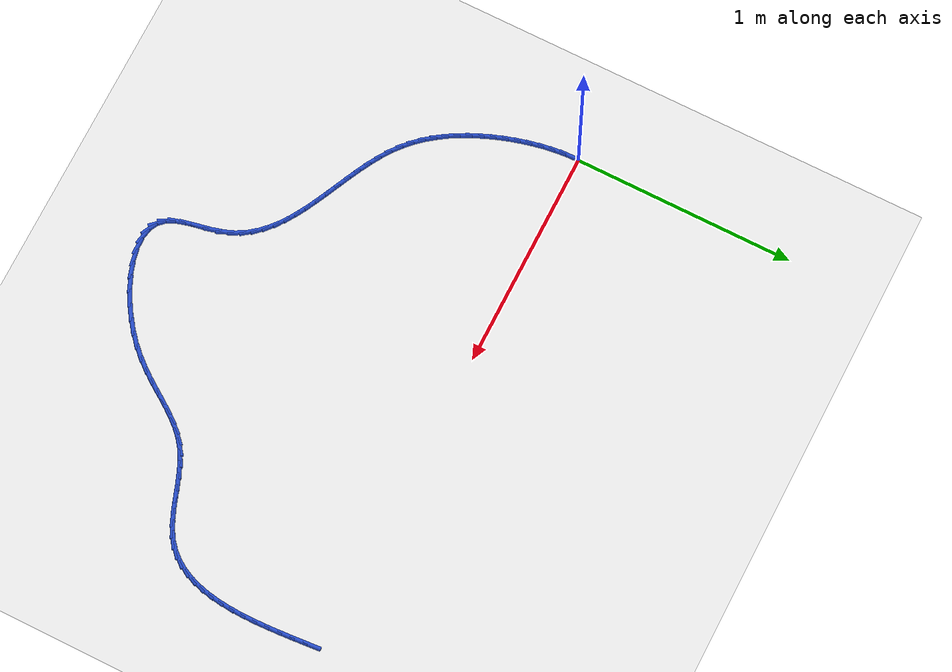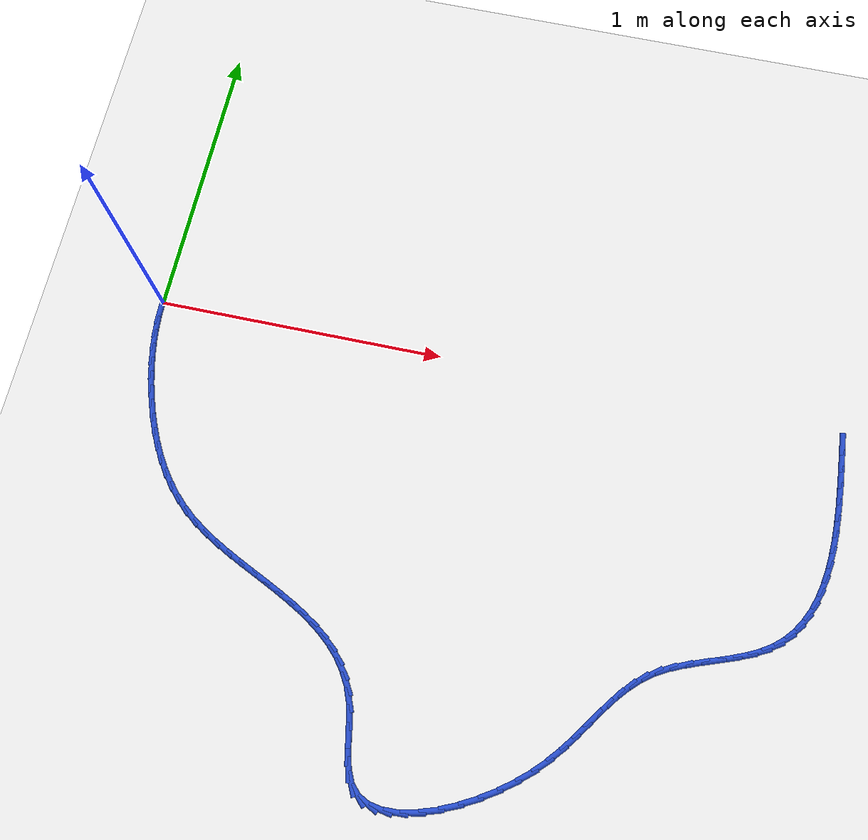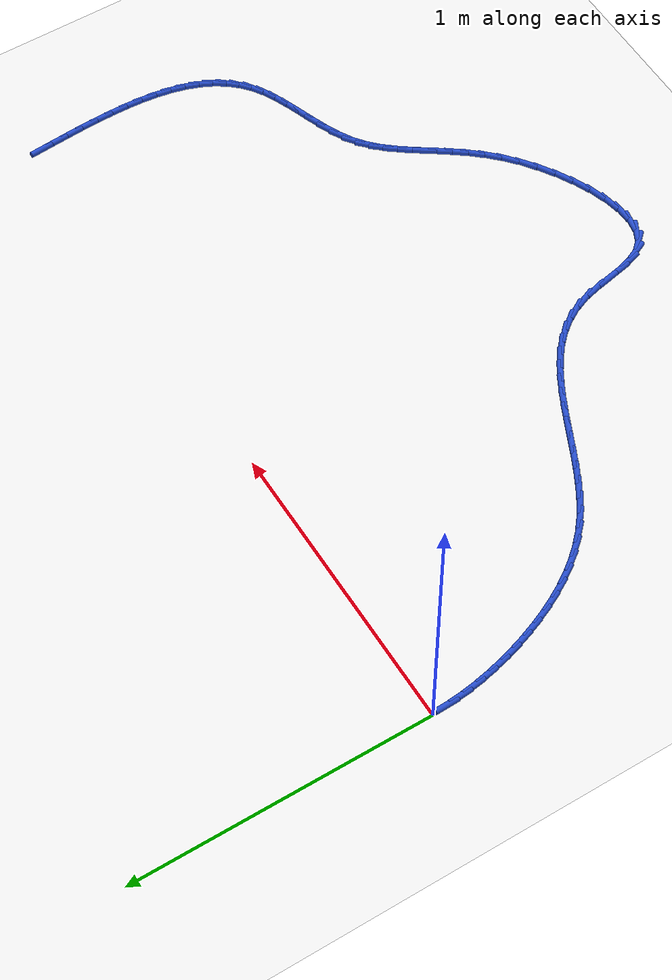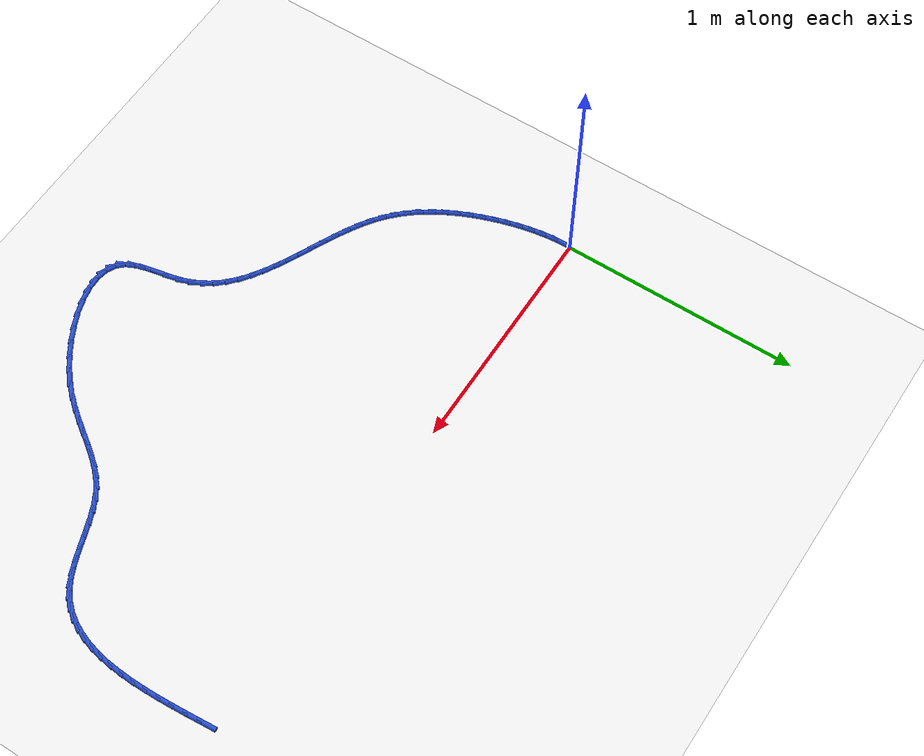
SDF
<sdf version="1.6">
 <world name="default">
  <model name="ground_plane">
   <static>1</static>
   <link name="link">
    <collision name="collision">
     <geometry><plane><normal>0 0 1</normal><size>100 100</size></plane></geometry>
     <surface><friction><ode><mu>100</mu><mu2>50</mu2></ode></friction></surface>
    </collision>
    <visual name="visual">
     <cast_shadows>0</cast_shadows>
     <geometry><plane><normal>0 0 1</normal><size>100 100</size></plane></geometry>
     <material>
      <script><uri>file://media/materials/scripts/gazebo.material</uri><name>Gazebo/WhiteGlow</name></script>
     </material>
    </visual>
   </link>
  </model>
  <model name="line">
   <link name="link_79">
    <pose>2.4016268598637174 -0.034012466724216116 0.01 0 1.57 -1.4928908498108762</pose>
    <collision name="collision">
     <geometry><cylinder><radius>0.01</radius><length>0.08</length></cylinder></geometry>
    </collision>
    <visual name="visual">
     <material>
      <script><name>Gazebo/Blue</name><uri>file://media/materials/scripts/gazebo.material</uri></script>
     </material>
     <geometry><cylinder><radius>0.01</radius><length>0.08</length></cylinder></geometry>
    </visual>
   </link>
   <link name="link_80">
    <pose>2.4061755730700365 -0.09228188769851749 0.01 0 1.57 -1.4992579143648588</pose>
    <collision name="collision">
     <geometry><cylinder><radius>0.01</radius><length>0.08</length></cylinder></geometry>
    </collision>
    <visual name="visual">
     <material>
      <script><name>Gazebo/Blue</name><uri>file://media/materials/scripts/gazebo.material</uri></script>
     </material>
     <geometry><cylinder><radius>0.01</radius><length>0.08</length></cylinder></geometry>
    </visual>
   </link>
   <link name="link_81">
    <pose>2.410336416824834 -0.15034500576017712 0.01 0 1.57 -1.5116749627255117</pose>
    <collision name="collision">
     <geometry><cylinder><radius>0.01</radius><length>0.08</length></cylinder></geometry>
    </collision>
    <visual name="visual">
     <material>
      <script><name>Gazebo/Blue</name><uri>file://media/materials/scripts/gazebo.material</uri></script>
     </material>
     <geometry><cylinder><radius>0.01</radius><length>0.08</length></cylinder></geometry>
    </visual>
   </link>
   <link name="link_82">
    <pose>2.413743878165737 -0.20791286460964334 0.01 0 1.57 -1.5305148673764126</pose>
    <collision name="collision">
     <geometry><cylinder><radius>0.01</radius><length>0.08</length></cylinder></geometry>
    </collision>
    <visual name="visual">
     <material>
      <script><name>Gazebo/Blue</name><uri>file://media/materials/scripts/gazebo.material</uri></script>
     </material>
     <geometry><cylinder><radius>0.01</radius><length>0.08</length></cylinder></geometry>
    </visual>
   </link>
   <link name="link_83">
    <pose>2.4160324441303698 -0.26469650794736166 0.01 0 1.57 -1.556362742582866</pose>
    <collision name="collision">
     <geometry><cylinder><radius>0.01</radius><length>0.08</length></cylinder></geometry>
    </collision>
    <visual name="visual">
     <material>
      <script><name>Gazebo/Blue</name><uri>file://media/materials/scripts/gazebo.material</uri></script>
     </material>
     <geometry><cylinder><radius>0.01</radius><length>0.08</length></cylinder></geometry>
    </visual>
   </link>
   <link name="link_84">
    <pose>2.4168366017563585 -0.32040697947378044 0.01 0 1.57 1.5515568325713953</pose>
    <collision name="collision">
     <geometry><cylinder><radius>0.01</radius><length>0.08</length></cylinder></geometry>
    </collision>
    <visual name="visual">
     <material>
      <script><name>Gazebo/Blue</name><uri>file://media/materials/scripts/gazebo.material</uri></script>
     </material>
     <geometry><cylinder><radius>0.01</radius><length>0.08</length></cylinder></geometry>
    </visual>
   </link>
   <link name="link_85">
    <pose>2.4157908380813287 -0.3747553228893472 0.01 0 1.57 1.5089896166461112</pose>
    <collision name="collision">
     <geometry><cylinder><radius>0.01</radius><length>0.08</length></cylinder></geometry>
    </collision>
    <visual name="visual">
     <material>
      <script><name>Gazebo/Blue</name><uri>file://media/materials/scripts/gazebo.material</uri></script>
     </material>
     <geometry><cylinder><radius>0.01</radius><length>0.08</length></cylinder></geometry>
    </visual>
   </link>
   <link name="link_86">
    <pose>2.412529640142906 -0.4274525818945093 0.01 0 1.57 1.4562008136904623</pose>
    <collision name="collision">
     <geometry><cylinder><radius>0.01</radius><length>0.08</length></cylinder></geometry>
    </collision>
    <visual name="visual">
     <material>
      <script><name>Gazebo/Blue</name><uri>file://media/materials/scripts/gazebo.material</uri></script>
     </material>
     <geometry><cylinder><radius>0.01</radius><length>0.08</length></cylinder></geometry>
    </visual>
   </link>
   <link name="link_87">
    <pose>2.4066874949787156 -0.4782098001897152 0.01 0 1.57 1.3916352321338998</pose>
    <collision name="collision">
     <geometry><cylinder><radius>0.01</radius><length>0.08</length></cylinder></geometry>
    </collision>
    <visual name="visual">
     <material>
      <script><name>Gazebo/Blue</name><uri>file://media/materials/scripts/gazebo.material</uri></script>
     </material>
     <geometry><cylinder><radius>0.01</radius><length>0.08</length></cylinder></geometry>
    </visual>
   </link>
   <link name="link_88">
    <pose>2.3978988896263838 -0.5267380214754103 0.01 0 1.57 1.3136227654888197</pose>
    <collision name="collision">
     <geometry><cylinder><radius>0.01</radius><length>0.08</length></cylinder></geometry>
    </collision>
    <visual name="visual">
     <material>
      <script><name>Gazebo/Blue</name><uri>file://media/materials/scripts/gazebo.material</uri></script>
     </material>
     <geometry><cylinder><radius>0.01</radius><length>0.08</length></cylinder></geometry>
    </visual>
   </link>
   <link name="link_89">
    <pose>2.3857983111235352 -0.572748289452043 0.01 0 1.57 1.2206409488602057</pose>
    <collision name="collision">
     <geometry><cylinder><radius>0.01</radius><length>0.08</length></cylinder></geometry>
    </collision>
    <visual name="visual">
     <material>
      <script><name>Gazebo/Blue</name><uri>file://media/materials/scripts/gazebo.material</uri></script>
     </material>
     <geometry><cylinder><radius>0.01</radius><length>0.08</length></cylinder></geometry>
    </visual>
   </link>
   <link name="link_90">
    <pose>2.370020246507796 -0.6159516478200607 0.01 0 1.57 1.1118006580434525</pose>
    <collision name="collision">
     <geometry><cylinder><radius>0.01</radius><length>0.08</length></cylinder></geometry>
    </collision>
    <visual name="visual">
     <material>
      <script><name>Gazebo/Blue</name><uri>file://media/materials/scripts/gazebo.material</uri></script>
     </material>
     <geometry><cylinder><radius>0.01</radius><length>0.08</length></cylinder></geometry>
    </visual>
   </link>
   <link name="link_91">
    <pose>2.3501991828167923 -0.6560591402799111 0.01 0 1.57 0.9875634459735474</pose>
    <collision name="collision">
     <geometry><cylinder><radius>0.01</radius><length>0.08</length></cylinder></geometry>
    </collision>
    <visual name="visual">
     <material>
      <script><name>Gazebo/Blue</name><uri>file://media/materials/scripts/gazebo.material</uri></script>
     </material>
     <geometry><cylinder><radius>0.01</radius><length>0.08</length></cylinder></geometry>
    </visual>
   </link>
   <link name="link_92">
    <pose>2.3259696070881484 -0.692781810532042 0.01 0 1.57 0.8504974801002713</pose>
    <collision name="collision">
     <geometry><cylinder><radius>0.01</radius><length>0.08</length></cylinder></geometry>
    </collision>
    <visual name="visual">
     <material>
      <script><name>Gazebo/Blue</name><uri>file://media/materials/scripts/gazebo.material</uri></script>
     </material>
     <geometry><cylinder><radius>0.01</radius><length>0.08</length></cylinder></geometry>
    </visual>
   </link>
   <link name="link_93">
    <pose>2.296966006359491 -0.7258307022768995 0.01 0 1.57 0.7055895797726708</pose>
    <collision name="collision">
     <geometry><cylinder><radius>0.01</radius><length>0.08</length></cylinder></geometry>
    </collision>
    <visual name="visual">
     <material>
      <script><name>Gazebo/Blue</name><uri>file://media/materials/scripts/gazebo.material</uri></script>
     </material>
     <geometry><cylinder><radius>0.01</radius><length>0.08</length></cylinder></geometry>
    </visual>
   </link>
   <link name="link_94">
    <pose>2.262822867668445 -0.7549168592149318 0.01 0 1.57 0.5620450698267485</pose>
    <collision name="collision">
     <geometry><cylinder><radius>0.01</radius><length>0.08</length></cylinder></geometry>
    </collision>
    <visual name="visual">
     <material>
      <script><name>Gazebo/Blue</name><uri>file://media/materials/scripts/gazebo.material</uri></script>
     </material>
     <geometry><cylinder><radius>0.01</radius><length>0.08</length></cylinder></geometry>
    </visual>
   </link>
   <link name="link_95">
    <pose>2.2232693308701883 -0.7798277602729524 0.01 0 1.57 0.4503980553552897</pose>
    <collision name="collision">
     <geometry><cylinder><radius>0.01</radius><length>0.08</length></cylinder></geometry>
    </collision>
    <visual name="visual">
     <material>
      <script><name>Gazebo/Blue</name><uri>file://media/materials/scripts/gazebo.material</uri></script>
     </material>
     <geometry><cylinder><radius>0.01</radius><length>0.08</length></cylinder></geometry>
    </visual>
   </link>
   <link name="link_96">
    <pose>2.1790801612072 -0.8011952608605857 0.01 0 1.57 0.3808741684488332</pose>
    <collision name="collision">
     <geometry><cylinder><radius>0.01</radius><length>0.08</length></cylinder></geometry>
    </collision>
    <visual name="visual">
     <material>
      <script><name>Gazebo/Blue</name><uri>file://media/materials/scripts/gazebo.material</uri></script>
     </material>
     <geometry><cylinder><radius>0.01</radius><length>0.08</length></cylinder></geometry>
    </visual>
   </link>
   <link name="link_97">
    <pose>2.1316796180220736 -0.8201757039816925 0.01 0 1.57 0.3465193372691935</pose>
    <collision name="collision">
     <geometry><cylinder><radius>0.01</radius><length>0.08</length></cylinder></geometry>
    </collision>
    <visual name="visual">
     <material>
      <script><name>Gazebo/Blue</name><uri>file://media/materials/scripts/gazebo.material</uri></script>
     </material>
     <geometry><cylinder><radius>0.01</radius><length>0.08</length></cylinder></geometry>
    </visual>
   </link>
   <link name="link_98">
    <pose>2.082501711639624 -0.8379333068751836 0.01 0 1.57 0.3432534417044903</pose>
    <collision name="collision">
     <geometry><cylinder><radius>0.01</radius><length>0.08</length></cylinder></geometry>
    </collision>
    <visual name="visual">
     <material>
      <script><name>Gazebo/Blue</name><uri>file://media/materials/scripts/gazebo.material</uri></script>
     </material>
     <geometry><cylinder><radius>0.01</radius><length>0.08</length></cylinder></geometry>
    </visual>
   </link>
   <link name="link_99">
    <pose>2.0329804523846664 -0.8556322867799707 0.01 0 1.57 0.37036120423127605</pose>
    <collision name="collision">
     <geometry><cylinder><radius>0.01</radius><length>0.08</length></cylinder></geometry>
    </collision>
    <visual name="visual">
     <material>
      <script><name>Gazebo/Blue</name><uri>file://media/materials/scripts/gazebo.material</uri></script>
     </material>
     <geometry><cylinder><radius>0.01</radius><length>0.08</length></cylinder></geometry>
    </visual>
   </link>
   <link name="link_100">
    <pose>1.9845498505820183 -0.8744368609349649 0.01 0 1.57 0.4303771600691061</pose>
    <collision name="collision">
     <geometry><cylinder><radius>0.01</radius><length>0.08</length></cylinder></geometry>
    </collision>
    <visual name="visual">
     <material>
      <script><name>Gazebo/Blue</name><uri>file://media/materials/scripts/gazebo.material</uri></script>
     </material>
     <geometry><cylinder><radius>0.01</radius><length>0.08</length></cylinder></geometry>
    </visual>
   </link>
   <link name="link_101">
    <pose>1.9386439165564935 -0.8955112465790778 0.01 0 1.57 0.5287472850861783</pose>
    <collision name="collision">
     <geometry><cylinder><radius>0.01</radius><length>0.08</length></cylinder></geometry>
    </collision>
    <visual name="visual">
     <material>
      <script><name>Gazebo/Blue</name><uri>file://media/materials/scripts/gazebo.material</uri></script>
     </material>
     <geometry><cylinder><radius>0.01</radius><length>0.08</length></cylinder></geometry>
    </visual>
   </link>
   <link name="link_102">
    <pose>1.896695606768263 -0.9200189372976776 0.01 0 1.57 0.6570751171503502</pose>
    <collision name="collision">
     <geometry><cylinder><radius>0.01</radius><length>0.08</length></cylinder></geometry>
    </collision>
    <visual name="visual">
     <material>
      <script><name>Gazebo/Blue</name><uri>file://media/materials/scripts/gazebo.material</uri></script>
     </material>
     <geometry><cylinder><radius>0.01</radius><length>0.08</length></cylinder></geometry>
    </visual>
   </link>
   <link name="link_103">
    <pose>1.8595187123613213 -0.9486982665996623 0.01 0 1.57 0.7731693455189845</pose>
    <collision name="collision">
     <geometry><cylinder><radius>0.01</radius><length>0.08</length></cylinder></geometry>
    </collision>
    <visual name="visual">
     <material>
      <script><name>Gazebo/Blue</name><uri>file://media/materials/scripts/gazebo.material</uri></script>
     </material>
     <geometry><cylinder><radius>0.01</radius><length>0.08</length></cylinder></geometry>
    </visual>
   </link>
   <link name="link_104">
    <pose>1.826266291043027 -0.9811471979885698 0.01 0 1.57 0.8635835215932812</pose>
    <collision name="collision">
     <geometry><cylinder><radius>0.01</radius><length>0.08</length></cylinder></geometry>
    </collision>
    <visual name="visual">
     <material>
      <script><name>Gazebo/Blue</name><uri>file://media/materials/scripts/gazebo.material</uri></script>
     </material>
     <geometry><cylinder><radius>0.01</radius><length>0.08</length></cylinder></geometry>
    </visual>
   </link>
   <link name="link_105">
    <pose>1.7958158611285415 -1.016774491299714 0.01 0 1.57 0.9254537065114647</pose>
    <collision name="collision">
     <geometry><cylinder><radius>0.01</radius><length>0.08</length></cylinder></geometry>
    </collision>
    <visual name="visual">
     <material>
      <script><name>Gazebo/Blue</name><uri>file://media/materials/scripts/gazebo.material</uri></script>
     </material>
     <geometry><cylinder><radius>0.01</radius><length>0.08</length></cylinder></geometry>
    </visual>
   </link>
   <link name="link_106">
    <pose>1.7670449409330244 -1.0549889063684093 0.01 0 1.57 0.9589582135189496</pose>
    <collision name="collision">
     <geometry><cylinder><radius>0.01</radius><length>0.08</length></cylinder></geometry>
    </collision>
    <visual name="visual">
     <material>
      <script><name>Gazebo/Blue</name><uri>file://media/materials/scripts/gazebo.material</uri></script>
     </material>
     <geometry><cylinder><radius>0.01</radius><length>0.08</length></cylinder></geometry>
    </visual>
   </link>
   <link name="link_107">
    <pose>1.7388310487716412 -1.0951992030299689 0.01 0 1.57 0.9657553419800111</pose>
    <collision name="collision">
     <geometry><cylinder><radius>0.01</radius><length>0.08</length></cylinder></geometry>
    </collision>
    <visual name="visual">
     <material>
      <script><name>Gazebo/Blue</name><uri>file://media/materials/scripts/gazebo.material</uri></script>
     </material>
     <geometry><cylinder><radius>0.01</radius><length>0.08</length></cylinder></geometry>
    </visual>
   </link>
   <link name="link_108">
    <pose>1.7100517029595497 -1.1368141411197057 0.01 0 1.57 0.9480336392150294</pose>
    <collision name="collision">
     <geometry><cylinder><radius>0.01</radius><length>0.08</length></cylinder></geometry>
    </collision>
    <visual name="visual">
     <material>
      <script><name>Gazebo/Blue</name><uri>file://media/materials/scripts/gazebo.material</uri></script>
     </material>
     <geometry><cylinder><radius>0.01</radius><length>0.08</length></cylinder></geometry>
    </visual>
   </link>
   <link name="link_109">
    <pose>1.6795844218119134 -1.1792424804729347 0.01 0 1.57 0.9082197888237323</pose>
    <collision name="collision">
     <geometry><cylinder><radius>0.01</radius><length>0.08</length></cylinder></geometry>
    </collision>
    <visual name="visual">
     <material>
      <script><name>Gazebo/Blue</name><uri>file://media/materials/scripts/gazebo.material</uri></script>
     </material>
     <geometry><cylinder><radius>0.01</radius><length>0.08</length></cylinder></geometry>
    </visual>
   </link>
   <link name="link_110">
    <pose>1.646306723643893 -1.2218929809249692 0.01 0 1.57 0.8491022092211523</pose>
    <collision name="collision">
     <geometry><cylinder><radius>0.01</radius><length>0.08</length></cylinder></geometry>
    </collision>
    <visual name="visual">
     <material>
      <script><name>Gazebo/Blue</name><uri>file://media/materials/scripts/gazebo.material</uri></script>
     </material>
     <geometry><cylinder><radius>0.01</radius><length>0.08</length></cylinder></geometry>
    </visual>
   </link>
   <link name="link_111">
    <pose>1.6090961267706496 -1.2641744023111237 0.01 0 1.57 0.7741345859926959</pose>
    <collision name="collision">
     <geometry><cylinder><radius>0.01</radius><length>0.08</length></cylinder></geometry>
    </collision>
    <visual name="visual">
     <material>
      <script><name>Gazebo/Blue</name><uri>file://media/materials/scripts/gazebo.material</uri></script>
     </material>
     <geometry><cylinder><radius>0.01</radius><length>0.08</length></cylinder></geometry>
    </visual>
   </link>
   <link name="link_112">
    <pose>1.5668341225615794 -1.3054949284055615 0.01 0 1.57 0.6936280479815555</pose>
    <collision name="collision">
     <geometry><cylinder><radius>0.01</radius><length>0.08</length></cylinder></geometry>
    </collision>
    <visual name="visual">
     <material>
      <script><name>Gazebo/Blue</name><uri>file://media/materials/scripts/gazebo.material</uri></script>
     </material>
     <geometry><cylinder><radius>0.01</radius><length>0.08</length></cylinder></geometry>
    </visual>
   </link>
   <link name="link_113">
    <pose>1.5191321657420769 -1.3451569041228402 0.01 0 1.57 0.6198327867504602</pose>
    <collision name="collision">
     <geometry><cylinder><radius>0.01</radius><length>0.08</length></cylinder></geometry>
    </collision>
    <visual name="visual">
     <material>
      <script><name>Gazebo/Blue</name><uri>file://media/materials/scripts/gazebo.material</uri></script>
     </material>
     <geometry><cylinder><radius>0.01</radius><length>0.08</length></cylinder></geometry>
    </visual>
   </link>
   <link name="link_114">
    <pose>1.4671783734599615 -1.3822340709121406 0.01 0 1.57 0.5490815719572112</pose>
    <collision name="collision">
     <geometry><cylinder><radius>0.01</radius><length>0.08</length></cylinder></geometry>
    </collision>
    <visual name="visual">
     <material>
      <script><name>Gazebo/Blue</name><uri>file://media/materials/scripts/gazebo.material</uri></script>
     </material>
     <geometry><cylinder><radius>0.01</radius><length>0.08</length></cylinder></geometry>
    </visual>
   </link>
   <link name="link_115">
    <pose>1.4123663650709475 -1.4157703740429428 0.01 0 1.57 0.4763747366963331</pose>
    <collision name="collision">
     <geometry><cylinder><radius>0.01</radius><length>0.08</length></cylinder></geometry>
    </collision>
    <visual name="visual">
     <material>
      <script><name>Gazebo/Blue</name><uri>file://media/materials/scripts/gazebo.material</uri></script>
     </material>
     <geometry><cylinder><radius>0.01</radius><length>0.08</length></cylinder></geometry>
    </visual>
   </link>
   <link name="link_116">
    <pose>1.3560897599307458 -1.444809758784727 0.01 0 1.57 0.3964269598243649</pose>
    <collision name="collision">
     <geometry><cylinder><radius>0.01</radius><length>0.08</length></cylinder></geometry>
    </collision>
    <visual name="visual">
     <material>
      <script><name>Gazebo/Blue</name><uri>file://media/materials/scripts/gazebo.material</uri></script>
     </material>
     <geometry><cylinder><radius>0.01</radius><length>0.08</length></cylinder></geometry>
    </visual>
   </link>
   <link name="link_117">
    <pose>1.2997421773950726 -1.4683961704069735 0.01 0 1.57 0.3025883076018538</pose>
    <collision name="collision">
     <geometry><cylinder><radius>0.01</radius><length>0.08</length></cylinder></geometry>
    </collision>
    <visual name="visual">
     <material>
      <script><name>Gazebo/Blue</name><uri>file://media/materials/scripts/gazebo.material</uri></script>
     </material>
     <geometry><cylinder><radius>0.01</radius><length>0.08</length></cylinder></geometry>
    </visual>
   </link>
   <link name="link_118">
    <pose>1.2447172368196393 -1.4855735541791624 0.01 0 1.57 0.1854296481335012</pose>
    <collision name="collision">
     <geometry><cylinder><radius>0.01</radius><length>0.08</length></cylinder></geometry>
    </collision>
    <visual name="visual">
     <material>
      <script><name>Gazebo/Blue</name><uri>file://media/materials/scripts/gazebo.material</uri></script>
     </material>
     <geometry><cylinder><radius>0.01</radius><length>0.08</length></cylinder></geometry>
    </visual>
   </link>
   <link name="link_119">
    <pose>1.192408557560159 -1.4953858553707742 0.01 0 1.57 0.030927916114641883</pose>
    <collision name="collision">
     <geometry><cylinder><radius>0.01</radius><length>0.08</length></cylinder></geometry>
    </collision>
    <visual name="visual">
     <material>
      <script><name>Gazebo/Blue</name><uri>file://media/materials/scripts/gazebo.material</uri></script>
     </material>
     <geometry><cylinder><radius>0.01</radius><length>0.08</length></cylinder></geometry>
    </visual>
   </link>
   <link name="link_120">
    <pose>1.1442097589723446 -1.4968770192512886 0.01 0 1.57 -0.1803805029006516</pose>
    <collision name="collision">
     <geometry><cylinder><radius>0.01</radius><length>0.08</length></cylinder></geometry>
    </collision>
    <visual name="visual">
     <material>
      <script><name>Gazebo/Blue</name><uri>file://media/materials/scripts/gazebo.material</uri></script>
     </material>
     <geometry><cylinder><radius>0.01</radius><length>0.08</length></cylinder></geometry>
    </visual>
   </link>
   <link name="link_121">
    <pose>1.1015144604119083 -1.4890909910901857 0.01 0 1.57 -0.4663298431588071</pose>
    <collision name="collision">
     <geometry><cylinder><radius>0.01</radius><length>0.08</length></cylinder></geometry>
    </collision>
    <visual name="visual">
     <material>
      <script><name>Gazebo/Blue</name><uri>file://media/materials/scripts/gazebo.material</uri></script>
     </material>
     <geometry><cylinder><radius>0.01</radius><length>0.08</length></cylinder></geometry>
    </visual>
   </link>
   <link name="link_122">
    <pose>1.065716281234565 -1.4710717161569464 0.01 0 1.57 -0.8150443763082482</pose>
    <collision name="collision">
     <geometry><cylinder><radius>0.01</radius><length>0.08</length></cylinder></geometry>
    </collision>
    <visual name="visual">
     <material>
      <script><name>Gazebo/Blue</name><uri>file://media/materials/scripts/gazebo.material</uri></script>
     </material>
     <geometry><cylinder><radius>0.01</radius><length>0.08</length></cylinder></geometry>
    </visual>
   </link>
   <link name="link_123">
    <pose>1.0381991099756298 -1.4418726298788076 0.01 0 1.57 -1.1237443394700604</pose>
    <collision name="collision">
     <geometry><cylinder><radius>0.01</radius><length>0.08</length></cylinder></geometry>
    </collision>
    <visual name="visual">
     <material>
      <script><name>Gazebo/Blue</name><uri>file://media/materials/scripts/gazebo.material</uri></script>
     </material>
     <geometry><cylinder><radius>0.01</radius><length>0.08</length></cylinder></geometry>
    </visual>
   </link>
   <link name="link_124">
    <pose>1.019011184788705 -1.4018497847609226 0.01 0 1.57 -1.2960494253648573</pose>
    <collision name="collision">
     <geometry><cylinder><radius>0.01</radius><length>0.08</length></cylinder></geometry>
    </collision>
    <visual name="visual">
     <material>
      <script><name>Gazebo/Blue</name><uri>file://media/materials/scripts/gazebo.material</uri></script>
     </material>
     <geometry><cylinder><radius>0.01</radius><length>0.08</length></cylinder></geometry>
    </visual>
   </link>
   <link name="link_125">
    <pose>1.0055169318050676 -1.3539766692947288 0.01 0 1.57 -1.3684527923925682</pose>
    <collision name="collision">
     <geometry><cylinder><radius>0.01</radius><length>0.08</length></cylinder></geometry>
    </collision>
    <visual name="visual">
     <material>
      <script><name>Gazebo/Blue</name><uri>file://media/materials/scripts/gazebo.material</uri></script>
     </material>
     <geometry><cylinder><radius>0.01</radius><length>0.08</length></cylinder></geometry>
    </visual>
   </link>
   <link name="link_126">
    <pose>0.9947595134359493 -1.30154009019773 0.01 0 1.57 -1.3692015515063456</pose>
    <collision name="collision">
     <geometry><cylinder><radius>0.01</radius><length>0.08</length></cylinder></geometry>
    </collision>
    <visual name="visual">
     <material>
      <script><name>Gazebo/Blue</name><uri>file://media/materials/scripts/gazebo.material</uri></script>
     </material>
     <geometry><cylinder><radius>0.01</radius><length>0.08</length></cylinder></geometry>
    </visual>
   </link>
   <link name="link_127">
    <pose>0.9837820920925808 -1.247826854187436 0.01 0 1.57 -1.303582985407827</pose>
    <collision name="collision">
     <geometry><cylinder><radius>0.01</radius><length>0.08</length></cylinder></geometry>
    </collision>
    <visual name="visual">
     <material>
      <script><name>Gazebo/Blue</name><uri>file://media/materials/scripts/gazebo.material</uri></script>
     </material>
     <geometry><cylinder><radius>0.01</radius><length>0.08</length></cylinder></geometry>
    </visual>
   </link>
   <link name="link_128">
    <pose>0.9696278360509801 -1.1961237616702127 0.01 0 1.57 -1.1751916091519452</pose>
    <collision name="collision">
     <geometry><cylinder><radius>0.01</radius><length>0.08</length></cylinder></geometry>
    </collision>
    <visual name="visual">
     <material>
      <script><name>Gazebo/Blue</name><uri>file://media/materials/scripts/gazebo.material</uri></script>
     </material>
     <geometry><cylinder><radius>0.01</radius><length>0.08</length></cylinder></geometry>
    </visual>
   </link>
   <link name="link_129">
    <pose>0.9499661711526983 -1.1490436928215044 0.01 0 1.57 -1.0351025701668042</pose>
    <collision name="collision">
     <geometry><cylinder><radius>0.01</radius><length>0.08</length></cylinder></geometry>
    </collision>
    <visual name="visual">
     <material>
      <script><name>Gazebo/Blue</name><uri>file://media/materials/scripts/gazebo.material</uri></script>
     </material>
     <geometry><cylinder><radius>0.01</radius><length>0.08</length></cylinder></geometry>
    </visual>
   </link>
   <link name="link_130">
    <pose>0.9248149377400388 -1.1066723822304176 0.01 0 1.57 -0.9034903642754474</pose>
    <collision name="collision">
     <geometry><cylinder><radius>0.01</radius><length>0.08</length></cylinder></geometry>
    </collision>
    <visual name="visual">
     <material>
      <script><name>Gazebo/Blue</name><uri>file://media/materials/scripts/gazebo.material</uri></script>
     </material>
     <geometry><cylinder><radius>0.01</radius><length>0.08</length></cylinder></geometry>
    </visual>
   </link>
   <link name="link_131">
    <pose>0.8947423449895754 -1.0685033086598628 0.01 0 1.57 -0.7860892445197698</pose>
    <collision name="collision">
     <geometry><cylinder><radius>0.01</radius><length>0.08</length></cylinder></geometry>
    </collision>
    <visual name="visual">
     <material>
      <script><name>Gazebo/Blue</name><uri>file://media/materials/scripts/gazebo.material</uri></script>
     </material>
     <geometry><cylinder><radius>0.01</radius><length>0.08</length></cylinder></geometry>
    </visual>
   </link>
   <link name="link_132">
    <pose>0.860316602077884 -1.0340299508727533 0.01 0 1.57 -0.6860566924921656</pose>
    <collision name="collision">
     <geometry><cylinder><radius>0.01</radius><length>0.08</length></cylinder></geometry>
    </collision>
    <visual name="visual">
     <material>
      <script><name>Gazebo/Blue</name><uri>file://media/materials/scripts/gazebo.material</uri></script>
     </material>
     <geometry><cylinder><radius>0.01</radius><length>0.08</length></cylinder></geometry>
    </visual>
   </link>
   <link name="link_133">
    <pose>0.8221059181815391 -1.0027457876320007 0.01 0 1.57 -0.6042539467429455</pose>
    <collision name="collision">
     <geometry><cylinder><radius>0.01</radius><length>0.08</length></cylinder></geometry>
    </collision>
    <visual name="visual">
     <material>
      <script><name>Gazebo/Blue</name><uri>file://media/materials/scripts/gazebo.material</uri></script>
     </material>
     <geometry><cylinder><radius>0.01</radius><length>0.08</length></cylinder></geometry>
    </visual>
   </link>
   <link name="link_134">
    <pose>0.7806785024771152 -0.9741442977005162 0.01 0 1.57 -0.5400820272785813</pose>
    <collision name="collision">
     <geometry><cylinder><radius>0.01</radius><length>0.08</length></cylinder></geometry>
    </collision>
    <visual name="visual">
     <material>
      <script><name>Gazebo/Blue</name><uri>file://media/materials/scripts/gazebo.material</uri></script>
     </material>
     <geometry><cylinder><radius>0.01</radius><length>0.08</length></cylinder></geometry>
    </visual>
   </link>
   <link name="link_135">
    <pose>0.7366025641411877 -0.9477189598412123 0.01 0 1.57 -0.4922996577602303</pose>
    <collision name="collision">
     <geometry><cylinder><radius>0.01</radius><length>0.08</length></cylinder></geometry>
    </collision>
    <visual name="visual">
     <material>
      <script><name>Gazebo/Blue</name><uri>file://media/materials/scripts/gazebo.material</uri></script>
     </material>
     <geometry><cylinder><radius>0.01</radius><length>0.08</length></cylinder></geometry>
    </visual>
   </link>
   <link name="link_136">
    <pose>0.6904463123503299 -0.9229632528170004 0.01 0 1.57 -0.45958503972789067</pose>
    <collision name="collision">
     <geometry><cylinder><radius>0.01</radius><length>0.08</length></cylinder></geometry>
    </collision>
    <visual name="visual">
     <material>
      <script><name>Gazebo/Blue</name><uri>file://media/materials/scripts/gazebo.material</uri></script>
     </material>
     <geometry><cylinder><radius>0.01</radius><length>0.08</length></cylinder></geometry>
    </visual>
   </link>
   <link name="link_137">
    <pose>0.6427779562811182 -0.8993706553907924 0.01 0 1.57 -0.44084678924616766</pose>
    <collision name="collision">
     <geometry><cylinder><radius>0.01</radius><length>0.08</length></cylinder></geometry>
    </collision>
    <visual name="visual">
     <material>
      <script><name>Gazebo/Blue</name><uri>file://media/materials/scripts/gazebo.material</uri></script>
     </material>
     <geometry><cylinder><radius>0.01</radius><length>0.08</length></cylinder></geometry>
    </visual>
   </link>
   <link name="link_138">
    <pose>0.5941657051101268 -0.8764346463255003 0.01 0 1.57 -0.4353676228055322</pose>
    <collision name="collision">
     <geometry><cylinder><radius>0.01</radius><length>0.08</length></cylinder></geometry>
    </collision>
    <visual name="visual">
     <material>
      <script><name>Gazebo/Blue</name><uri>file://media/materials/scripts/gazebo.material</uri></script>
     </material>
     <geometry><cylinder><radius>0.01</radius><length>0.08</length></cylinder></geometry>
    </visual>
   </link>
   <link name="link_139">
    <pose>0.5451777680139307 -0.8536487043840363 0.01 0 1.57 -0.4428558180777863</pose>
    <collision name="collision">
     <geometry><cylinder><radius>0.01</radius><length>0.08</length></cylinder></geometry>
    </collision>
    <visual name="visual">
     <material>
      <script><name>Gazebo/Blue</name><uri>file://media/materials/scripts/gazebo.material</uri></script>
     </material>
     <geometry><cylinder><radius>0.01</radius><length>0.08</length></cylinder></geometry>
    </visual>
   </link>
   <link name="link_140">
    <pose>0.49638235416910426 -0.8305063083293117 0.01 0 1.57 -0.4634482447751046</pose>
    <collision name="collision">
     <geometry><cylinder><radius>0.01</radius><length>0.08</length></cylinder></geometry>
    </collision>
    <visual name="visual">
     <material>
      <script><name>Gazebo/Blue</name><uri>file://media/materials/scripts/gazebo.material</uri></script>
     </material>
     <geometry><cylinder><radius>0.01</radius><length>0.08</length></cylinder></geometry>
    </visual>
   </link>
   <link name="link_141">
    <pose>0.44834767275222176 -0.806500936924238 0.01 0 1.57 -0.4976787497075334</pose>
    <collision name="collision">
     <geometry><cylinder><radius>0.01</radius><length>0.08</length></cylinder></geometry>
    </collision>
    <visual name="visual">
     <material>
      <script><name>Gazebo/Blue</name><uri>file://media/materials/scripts/gazebo.material</uri></script>
     </material>
     <geometry><cylinder><radius>0.01</radius><length>0.08</length></cylinder></geometry>
    </visual>
   </link>
   <link name="link_142">
    <pose>0.4016419329398594 -0.781126068931728 0.01 0 1.57 -0.5463994430109286</pose>
    <collision name="collision">
     <geometry><cylinder><radius>0.01</radius><length>0.08</length></cylinder></geometry>
    </collision>
    <visual name="visual">
     <material>
      <script><name>Gazebo/Blue</name><uri>file://media/materials/scripts/gazebo.material</uri></script>
     </material>
     <geometry><cylinder><radius>0.01</radius><length>0.08</length></cylinder></geometry>
    </visual>
   </link>
   <link name="link_143">
    <pose>0.3568333439085913 -0.7538751831146929 0.01 0 1.57 -0.6106176138048551</pose>
    <collision name="collision">
     <geometry><cylinder><radius>0.01</radius><length>0.08</length></cylinder></geometry>
    </collision>
    <visual name="visual">
     <material>
      <script><name>Gazebo/Blue</name><uri>file://media/materials/scripts/gazebo.material</uri></script>
     </material>
     <geometry><cylinder><radius>0.01</radius><length>0.08</length></cylinder></geometry>
    </visual>
   </link>
   <link name="link_144">
    <pose>0.3144901148349921 -0.7242417582360452 0.01 0 1.57 -0.6908431299753489</pose>
    <collision name="collision">
     <geometry><cylinder><radius>0.01</radius><length>0.08</length></cylinder></geometry>
    </collision>
    <visual name="visual">
     <material>
      <script><name>Gazebo/Blue</name><uri>file://media/materials/scripts/gazebo.material</uri></script>
     </material>
     <geometry><cylinder><radius>0.01</radius><length>0.08</length></cylinder></geometry>
    </visual>
   </link>
   <link name="link_145">
    <pose>0.2751683055769697 -0.6917322736893129 0.01 0 1.57 -0.7775095460920427</pose>
    <collision name="collision">
     <geometry><cylinder><radius>0.01</radius><length>0.08</length></cylinder></geometry>
    </collision>
    <visual name="visual">
     <material>
      <script><name>Gazebo/Blue</name><uri>file://media/materials/scripts/gazebo.material</uri></script>
     </material>
     <geometry><cylinder><radius>0.01</radius><length>0.08</length></cylinder></geometry>
    </visual>
   </link>
   <link name="link_146">
    <pose>0.2390860311676299 -0.6562148337423577 0.01 0 1.57 -0.8590601969244884</pose>
    <collision name="collision">
     <geometry><cylinder><radius>0.01</radius><length>0.08</length></cylinder></geometry>
    </collision>
    <visual name="visual">
     <material>
      <script><name>Gazebo/Blue</name><uri>file://media/materials/scripts/gazebo.material</uri></script>
     </material>
     <geometry><cylinder><radius>0.01</radius><length>0.08</length></cylinder></geometry>
    </visual>
   </link>
   <link name="link_147">
    <pose>0.20608735558043603 -0.6179578037634075 0.01 0 1.57 -0.9342523167068607</pose>
    <collision name="collision">
     <geometry><cylinder><radius>0.01</radius><length>0.08</length></cylinder></geometry>
    </collision>
    <visual name="visual">
     <material>
      <script><name>Gazebo/Blue</name><uri>file://media/materials/scripts/gazebo.material</uri></script>
     </material>
     <geometry><cylinder><radius>0.01</radius><length>0.08</length></cylinder></geometry>
    </visual>
   </link>
   <link name="link_148">
    <pose>0.17599694888941556 -0.5772503019653282 0.01 0 1.57 -1.002784937162447</pose>
    <collision name="collision">
     <geometry><cylinder><radius>0.01</radius><length>0.08</length></cylinder></geometry>
    </collision>
    <visual name="visual">
     <material>
      <script><name>Gazebo/Blue</name><uri>file://media/materials/scripts/gazebo.material</uri></script>
     </material>
     <geometry><cylinder><radius>0.01</radius><length>0.08</length></cylinder></geometry>
    </visual>
   </link>
   <link name="link_149">
    <pose>0.1486394811685964 -0.5343814465609862 0.01 0 1.57 -1.0646599554247216</pose>
    <collision name="collision">
     <geometry><cylinder><radius>0.01</radius><length>0.08</length></cylinder></geometry>
    </collision>
    <visual name="visual">
     <material>
      <script><name>Gazebo/Blue</name><uri>file://media/materials/scripts/gazebo.material</uri></script>
     </material>
     <geometry><cylinder><radius>0.01</radius><length>0.08</length></cylinder></geometry>
    </visual>
   </link>
   <link name="link_150">
    <pose>0.12383962249200646 -0.48964035576324755 0.01 0 1.57 -1.1200888200556842</pose>
    <collision name="collision">
     <geometry><cylinder><radius>0.01</radius><length>0.08</length></cylinder></geometry>
    </collision>
    <visual name="visual">
     <material>
      <script><name>Gazebo/Blue</name><uri>file://media/materials/scripts/gazebo.material</uri></script>
     </material>
     <geometry><cylinder><radius>0.01</radius><length>0.08</length></cylinder></geometry>
    </visual>
   </link>
   <link name="link_151">
    <pose>0.1014220429336734 -0.4433161477849782 0.01 0 1.57 -1.1694079544143856</pose>
    <collision name="collision">
     <geometry><cylinder><radius>0.01</radius><length>0.08</length></cylinder></geometry>
    </collision>
    <visual name="visual">
     <material>
      <script><name>Gazebo/Blue</name><uri>file://media/materials/scripts/gazebo.material</uri></script>
     </material>
     <geometry><cylinder><radius>0.01</radius><length>0.08</length></cylinder></geometry>
    </visual>
   </link>
   <link name="link_152">
    <pose>0.08121141256762587 -0.39569794083904564 0.01 0 1.57 -1.2133636592753159</pose>
    <collision name="collision">
     <geometry><cylinder><radius>0.01</radius><length>0.08</length></cylinder></geometry>
    </collision>
    <visual name="visual">
     <material>
      <script><name>Gazebo/Blue</name><uri>file://media/materials/scripts/gazebo.material</uri></script>
     </material>
     <geometry><cylinder><radius>0.01</radius><length>0.08</length></cylinder></geometry>
    </visual>
   </link>
   <link name="link_153">
    <pose>0.06305102183392823 -0.34707243729168435 0.01 0 1.57 -1.2556659315512897</pose>
    <collision name="collision">
     <geometry><cylinder><radius>0.01</radius><length>0.08</length></cylinder></geometry>
    </collision>
    <visual name="visual">
     <material>
      <script><name>Gazebo/Blue</name><uri>file://media/materials/scripts/gazebo.material</uri></script>
     </material>
     <geometry><cylinder><radius>0.01</radius><length>0.08</length></cylinder></geometry>
    </visual>
   </link>
   <link name="link_154">
    <pose>0.04695718716194111 -0.2977038907424089 0.01 0 1.57 -1.2985998932354426</pose>
    <collision name="collision">
     <geometry><cylinder><radius>0.01</radius><length>0.08</length></cylinder></geometry>
    </collision>
    <visual name="visual">
     <material>
      <script><name>Gazebo/Blue</name><uri>file://media/materials/scripts/gazebo.material</uri></script>
     </material>
     <geometry><cylinder><radius>0.01</radius><length>0.08</length></cylinder></geometry>
    </visual>
   </link>
   <link name="link_155">
    <pose>0.03304018436090642 -0.24784436429722073 0.01 0 1.57 -1.3427138318749245</pose>
    <collision name="collision">
     <geometry><cylinder><radius>0.01</radius><length>0.08</length></cylinder></geometry>
    </collision>
    <visual name="visual">
     <material>
      <script><name>Gazebo/Blue</name><uri>file://media/materials/scripts/gazebo.material</uri></script>
     </material>
     <geometry><cylinder><radius>0.01</radius><length>0.08</length></cylinder></geometry>
    </visual>
   </link>
   <link name="link_156">
    <pose>0.021411223475966273 -0.1977457998523307 0.01 0 1.57 -1.3885623027751455</pose>
    <collision name="collision">
     <geometry><cylinder><radius>0.01</radius><length>0.08</length></cylinder></geometry>
    </collision>
    <visual name="visual">
     <material>
      <script><name>Gazebo/Blue</name><uri>file://media/materials/scripts/gazebo.material</uri></script>
     </material>
     <geometry><cylinder><radius>0.01</radius><length>0.08</length></cylinder></geometry>
    </visual>
   </link>
   <link name="link_157">
    <pose>0.012181514552263384 -0.14766013930395244 0.01 0 1.57 -1.4367369768171185</pose>
    <collision name="collision">
     <geometry><cylinder><radius>0.01</radius><length>0.08</length></cylinder></geometry>
    </collision>
    <visual name="visual">
     <material>
      <script><name>Gazebo/Blue</name><uri>file://media/materials/scripts/gazebo.material</uri></script>
     </material>
     <geometry><cylinder><radius>0.01</radius><length>0.08</length></cylinder></geometry>
    </visual>
   </link>
   <link name="link_158">
    <pose>0.005462267634939833 -0.09783932454829668 0.01 0 1.57 -1.4878785604392557</pose>
    <collision name="collision">
     <geometry><cylinder><radius>0.01</radius><length>0.08</length></cylinder></geometry>
    </collision>
    <visual name="visual">
     <material>
      <script><name>Gazebo/Blue</name><uri>file://media/materials/scripts/gazebo.material</uri></script>
     </material>
     <geometry><cylinder><radius>0.01</radius><length>0.08</length></cylinder></geometry>
    </visual>
   </link>
   <link name="link_159">
    <pose>0.001364692769137926 -0.0485352974815752 0.01 0 1.57 -1.5426862013727183</pose>
    <collision name="collision">
     <geometry><cylinder><radius>0.01</radius><length>0.08</length></cylinder></geometry>
    </collision>
    <visual name="visual">
     <material>
      <script><name>Gazebo/Blue</name><uri>file://media/materials/scripts/gazebo.material</uri></script>
     </material>
     <geometry><cylinder><radius>0.01</radius><length>0.08</length></cylinder></geometry>
    </visual>
   </link>
  </model>
 </world>
</sdf>
